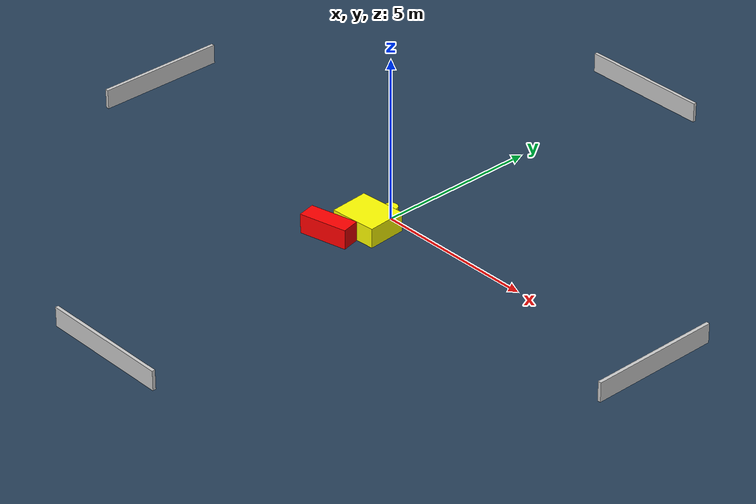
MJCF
<?xml version="1.0" ?>
<mujoco model="generated_environment">
  <option timestep="0.01" integrator="RK4" cone="elliptic"/>
  <default>
    <geom density="1"/>
  </default>
  <asset>
    <texture builtin="gradient" height="3072" name="skybox" rgb1="0.3 0.5 0.7" rgb2="0 0 0" type="skybox" width="512"/>
    <texture builtin="checker" height="300" name="groundplane" rgb1="0.2 0.3 0.4" rgb2="0.1 0.2 0.3" type="2d" width="300"/>
    <material name="groundplane" reflectance="0.2" texrepeat="5 5" texture="groundplane"/>
  </asset>
  <worldbody>
    <light dir="0 0 -1" directional="true" pos="0 0 1.5"/>
    <geom condim="3" friction="0.5 0.005 0.001" material="groundplane" name="floor" pos="0 0 0" size="0 0 0.05" type="plane"/>
    <body name="walls">
      <geom name="wall_1" condim="4" pos="-10.0 0.0 0.3" rgba="0.800000011920929 0.800000011920929 0.800000011920929 1.0" size="0.05 2.0 0.3" type="box"/>
      <geom name="wall_2" condim="4" pos="10.0 0.0 0.3" rgba="0.800000011920929 0.800000011920929 0.800000011920929 1.0" size="0.05 2.0 0.3" type="box"/>
      <geom name="wall_3" condim="4" pos="0.0 -10.0 0.3" rgba="0.800000011920929 0.800000011920929 0.800000011920929 1.0" size="2.0 0.05 0.3" type="box"/>
      <geom name="wall_4" condim="4" pos="0.0 10.0 0.3" rgba="0.800000011920929 0.800000011920929 0.800000011920929 1.0" size="2.0 0.05 0.3" type="box"/>
    </body>
    <body name="robot">
      <joint name="joint_x" type="slide" pos="0 0 0" axis="1 0 0"/>
      <joint name="joint_y" type="slide" pos="0 0 0" axis="0 1 0"/>
      <geom name="robot" type="cylinder" pos="0.0 0.0 0.2" size="0.2 0.2 0.0" mass="5.0" friction="1.0 0.005 0.0001" condim="4" rgba="1.0 1.0 0.0 1.0"/>
    </body>
    <body name="obstacle_1_movable">
      <geom name="obstacle_1_movable" condim="4" pos="-0.0032541987791873624 -0.8539280025709977 0.3" euler="0 0 184.27255844903556" friction="0.0 0.005 0.001" rgba="1.0 1.0 0.0 1.0" size="0.7198513024269142 0.6000500867897953 0.3" type="box" mass="0.1"/>
      <joint type="free"/>
    </body>
    <body name="obstacle_2_static">
      <geom name="obstacle_2_static" condim="4" pos="-0.4683551542090177 -1.881441640811532 0.3" euler="0 0 192.67100408499337" friction="0.0 0.005 0.001" rgba="1.0 0.0 0.0 1.0" size="0.7464655727532186 0.27643998534538494 0.3" type="box"/>
    </body>
  </worldbody>
  <actuator>
    <motor name="actuator_x" joint="joint_x" gear="1" ctrlrange="-1 1"/>
    <motor name="actuator_y" joint="joint_y" gear="1" ctrlrange="-1 1"/>
  </actuator>
</mujoco>
